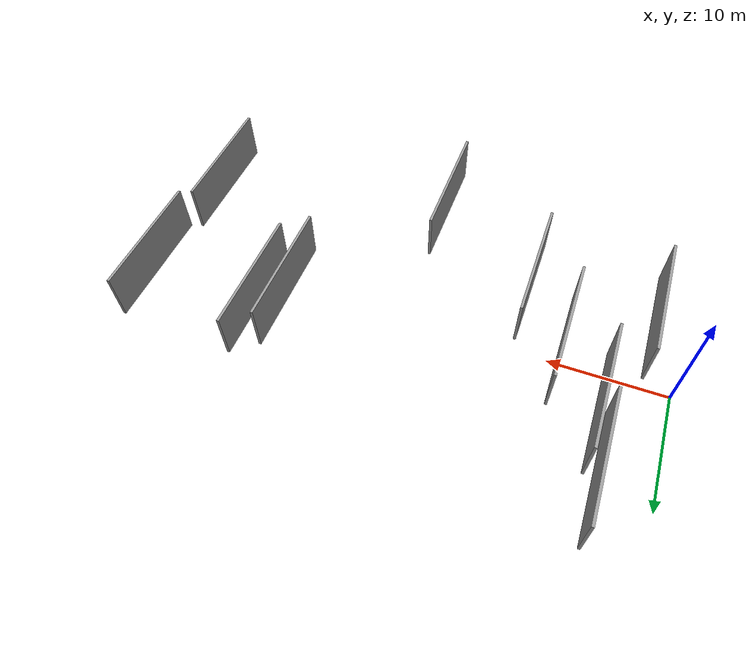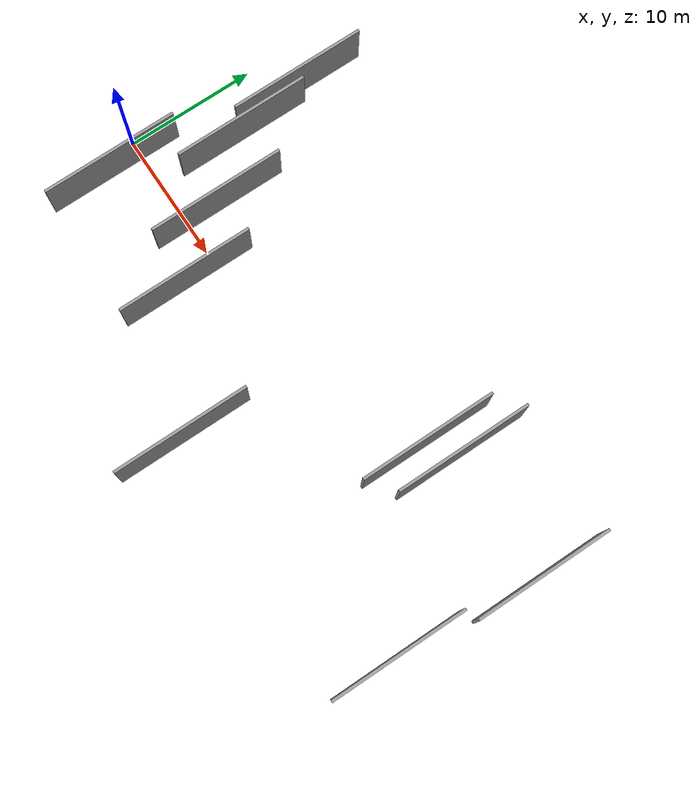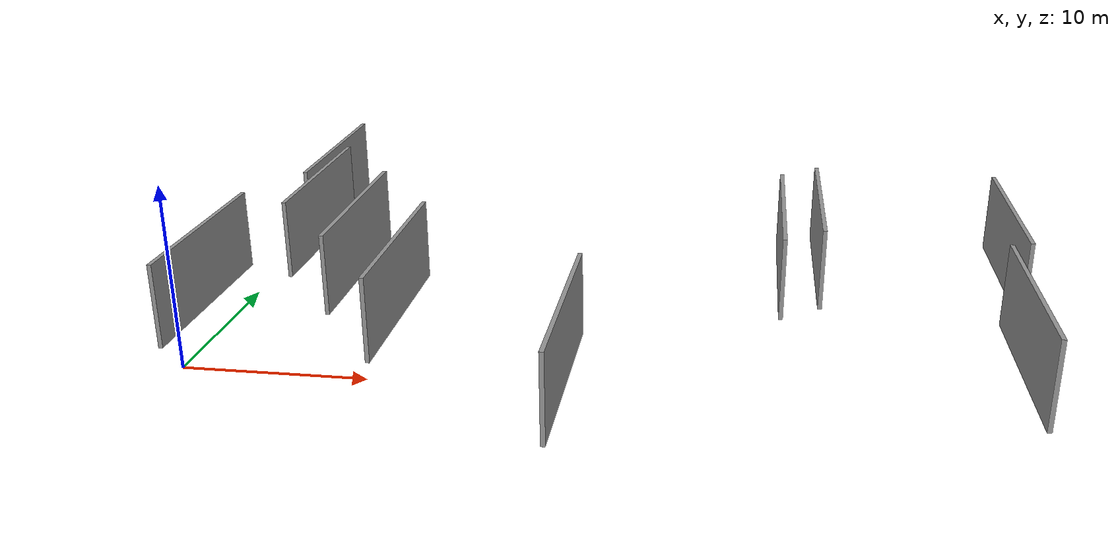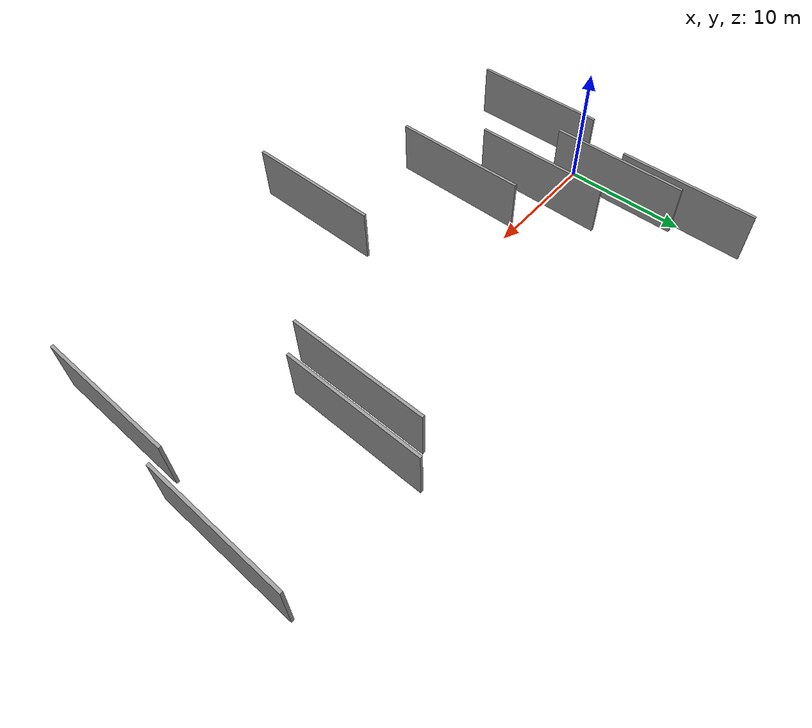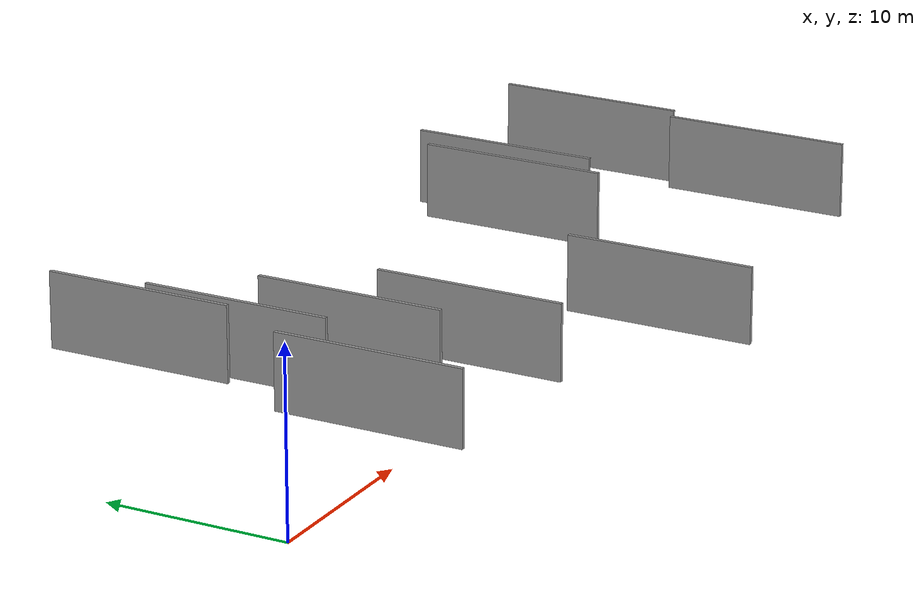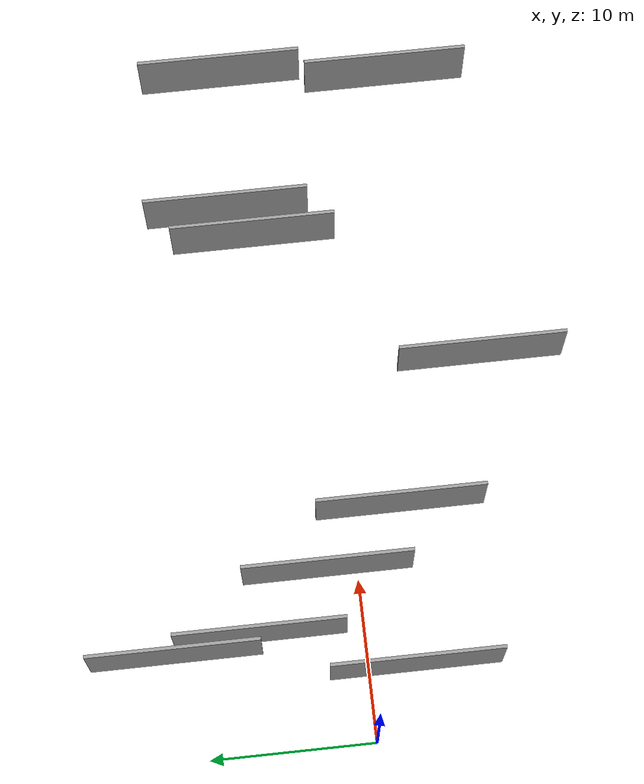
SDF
<sdf version="1.6">
 <world name="default">
  <scene>
   <sky><clouds><speed>12</speed></clouds></sky>
   <ambient>0.4 0.4 0.4 1</ambient>
   <background>0.7 0.7 0.7 1</background>
   <shadows>1</shadows>
  </scene>
  <gravity>0 0 -9.8066</gravity>
  <magnetic_field>6e-06 2.3e-05 -4.2e-05</magnetic_field>
  <physics default="0" name="default_physics" type="ode">
   <ode>
    <solver>
     <type>quick</type>
     <iters>10</iters>
     <sor>1.0</sor>
     <use_dynamic_moi_rescaling>0</use_dynamic_moi_rescaling>
    </solver>
    <constraints>
     <cfm>0</cfm>
     <erp>0.2</erp>
     <contact_max_correcting_vel>100</contact_max_correcting_vel>
     <contact_surface_layer>0.001</contact_surface_layer>
    </constraints>
   </ode>
   <max_step_size>0.004</max_step_size>
   <real_time_factor>1</real_time_factor>
   <real_time_update_rate>250</real_time_update_rate>
  </physics>
  <light name="sun" type="directional">
   <pose>0 0 10 0 0 0</pose>
   <diffuse>0.8 0.8 0.8 1</diffuse>
   <specular>0.2 0.2 0.2 1</specular>
   <attenuation>
    <range>1000</range>
    <constant>0.9</constant>
    <linear>0.01</linear>
    <quadratic>0.001</quadratic>
   </attenuation>
   <direction>-0.5 0.1 -0.9</direction>
  </light>
  <model name="grey_wall_1">
   <static>1</static>
   <pose>5.8956 6.2015 5.0 0.000000 0.000000 1.570796</pose>
   <link name="link">
    <pose>0 0 2.00 0 0 0</pose>
    <collision name="collision"><geometry><box><size>10.00 0.2 4.00</size></box></geometry></collision>
    <visual name="visual">
     <cast_shadows>0</cast_shadows>
     <geometry><box><size>10.00 0.2 4.00</size></box></geometry>
     <material>
      <script>
       <uri>model://grey_wall/materials/scripts</uri>
       <uri>model://grey_wall/materials/textures</uri>
       <name>vrc/grey_wall</name>
      </script>
     </material>
    </visual>
   </link>
  </model>
  <model name="grey_wall_2">
   <static>1</static>
   <pose>21.6035 -8.6039 5.0 0.000000 0.000000 1.570796</pose>
   <link name="link">
    <pose>0 0 2.00 0 0 0</pose>
    <collision name="collision"><geometry><box><size>10.00 0.2 4.00</size></box></geometry></collision>
    <visual name="visual">
     <cast_shadows>0</cast_shadows>
     <geometry><box><size>10.00 0.2 4.00</size></box></geometry>
     <material>
      <script>
       <uri>model://grey_wall/materials/scripts</uri>
       <uri>model://grey_wall/materials/textures</uri>
       <name>vrc/grey_wall</name>
      </script>
     </material>
    </visual>
   </link>
  </model>
  <model name="grey_wall_3">
   <static>1</static>
   <pose>5.1530 11.1800 5.0 0.000000 0.000000 1.570796</pose>
   <link name="link">
    <pose>0 0 2.00 0 0 0</pose>
    <collision name="collision"><geometry><box><size>10.00 0.2 4.00</size></box></geometry></collision>
    <visual name="visual">
     <cast_shadows>0</cast_shadows>
     <geometry><box><size>10.00 0.2 4.00</size></box></geometry>
     <material>
      <script>
       <uri>model://grey_wall/materials/scripts</uri>
       <uri>model://grey_wall/materials/textures</uri>
       <name>vrc/grey_wall</name>
      </script>
     </material>
    </visual>
   </link>
  </model>
  <model name="grey_wall_4">
   <static>1</static>
   <pose>12.8194 -2.7098 5.0 0.000000 0.000000 1.570796</pose>
   <link name="link">
    <pose>0 0 2.00 0 0 0</pose>
    <collision name="collision"><geometry><box><size>10.00 0.2 4.00</size></box></geometry></collision>
    <visual name="visual">
     <cast_shadows>0</cast_shadows>
     <geometry><box><size>10.00 0.2 4.00</size></box></geometry>
     <material>
      <script>
       <uri>model://grey_wall/materials/scripts</uri>
       <uri>model://grey_wall/materials/textures</uri>
       <name>vrc/grey_wall</name>
      </script>
     </material>
    </visual>
   </link>
  </model>
  <model name="grey_wall_5">
   <static>1</static>
   <pose>9.3639 1.9495 5.0 0.000000 0.000000 1.570796</pose>
   <link name="link">
    <pose>0 0 2.00 0 0 0</pose>
    <collision name="collision"><geometry><box><size>10.00 0.2 4.00</size></box></geometry></collision>
    <visual name="visual">
     <cast_shadows>0</cast_shadows>
     <geometry><box><size>10.00 0.2 4.00</size></box></geometry>
     <material>
      <script>
       <uri>model://grey_wall/materials/scripts</uri>
       <uri>model://grey_wall/materials/textures</uri>
       <name>vrc/grey_wall</name>
      </script>
     </material>
    </visual>
   </link>
  </model>
  <model name="grey_wall_6">
   <static>1</static>
   <pose>3.2209 -2.5352 5.0 0.000000 0.000000 1.570796</pose>
   <link name="link">
    <pose>0 0 2.00 0 0 0</pose>
    <collision name="collision"><geometry><box><size>10.00 0.2 4.00</size></box></geometry></collision>
    <visual name="visual">
     <cast_shadows>0</cast_shadows>
     <geometry><box><size>10.00 0.2 4.00</size></box></geometry>
     <material>
      <script>
       <uri>model://grey_wall/materials/scripts</uri>
       <uri>model://grey_wall/materials/textures</uri>
       <name>vrc/grey_wall</name>
      </script>
     </material>
    </visual>
   </link>
  </model>
  <model name="grey_wall_7">
   <static>1</static>
   <pose>40.8829 -4.9690 5.0 0.000000 0.000000 1.570796</pose>
   <link name="link">
    <pose>0 0 2.00 0 0 0</pose>
    <collision name="collision"><geometry><box><size>10.00 0.2 4.00</size></box></geometry></collision>
    <visual name="visual">
     <cast_shadows>0</cast_shadows>
     <geometry><box><size>10.00 0.2 4.00</size></box></geometry>
     <material>
      <script>
       <uri>model://grey_wall/materials/scripts</uri>
       <uri>model://grey_wall/materials/textures</uri>
       <name>vrc/grey_wall</name>
      </script>
     </material>
    </visual>
   </link>
  </model>
  <model name="grey_wall_8">
   <static>1</static>
   <pose>32.5624 5.7161 5.0 0.000000 0.000000 1.570796</pose>
   <link name="link">
    <pose>0 0 2.00 0 0 0</pose>
    <collision name="collision"><geometry><box><size>10.00 0.2 4.00</size></box></geometry></collision>
    <visual name="visual">
     <cast_shadows>0</cast_shadows>
     <geometry><box><size>10.00 0.2 4.00</size></box></geometry>
     <material>
      <script>
       <uri>model://grey_wall/materials/scripts</uri>
       <uri>model://grey_wall/materials/textures</uri>
       <name>vrc/grey_wall</name>
      </script>
     </material>
    </visual>
   </link>
  </model>
  <model name="grey_wall_9">
   <static>1</static>
   <pose>41.8541 5.3008 5.0 0.000000 0.000000 1.570796</pose>
   <link name="link">
    <pose>0 0 2.00 0 0 0</pose>
    <collision name="collision"><geometry><box><size>10.00 0.2 4.00</size></box></geometry></collision>
    <visual name="visual">
     <cast_shadows>0</cast_shadows>
     <geometry><box><size>10.00 0.2 4.00</size></box></geometry>
     <material>
      <script>
       <uri>model://grey_wall/materials/scripts</uri>
       <uri>model://grey_wall/materials/textures</uri>
       <name>vrc/grey_wall</name>
      </script>
     </material>
    </visual>
   </link>
  </model>
  <model name="grey_wall_10">
   <static>1</static>
   <pose>30.6865 4.2570 5.0 0.000000 0.000000 1.570796</pose>
   <link name="link">
    <pose>0 0 2.00 0 0 0</pose>
    <collision name="collision"><geometry><box><size>10.00 0.2 4.00</size></box></geometry></collision>
    <visual name="visual">
     <cast_shadows>0</cast_shadows>
     <geometry><box><size>10.00 0.2 4.00</size></box></geometry>
     <material>
      <script>
       <uri>model://grey_wall/materials/scripts</uri>
       <uri>model://grey_wall/materials/textures</uri>
       <name>vrc/grey_wall</name>
      </script>
     </material>
    </visual>
   </link>
  </model>
 </world>
</sdf>
